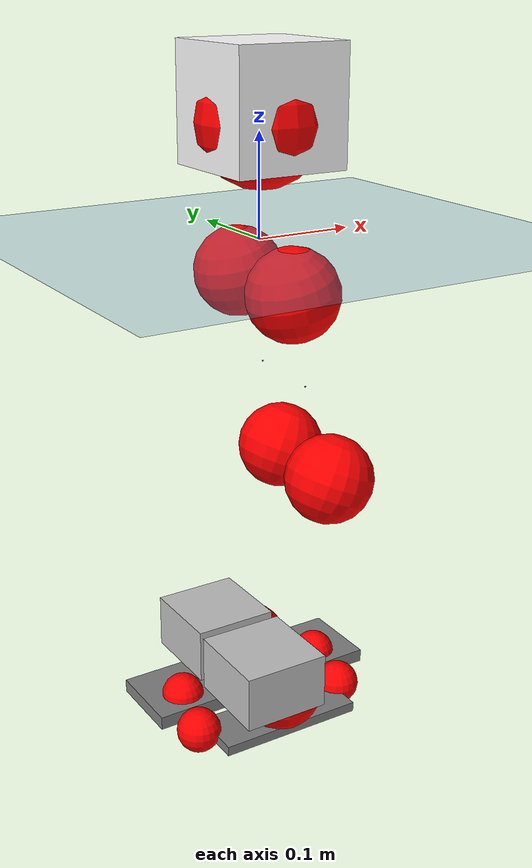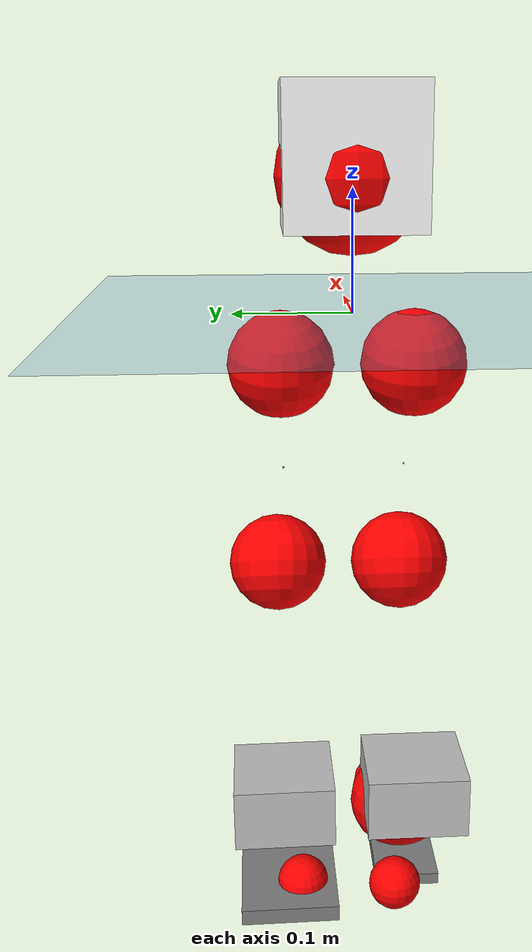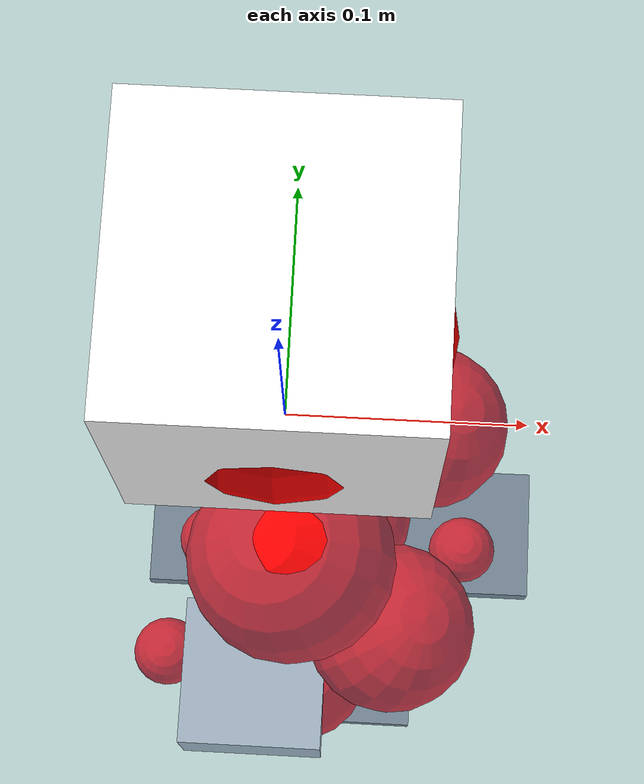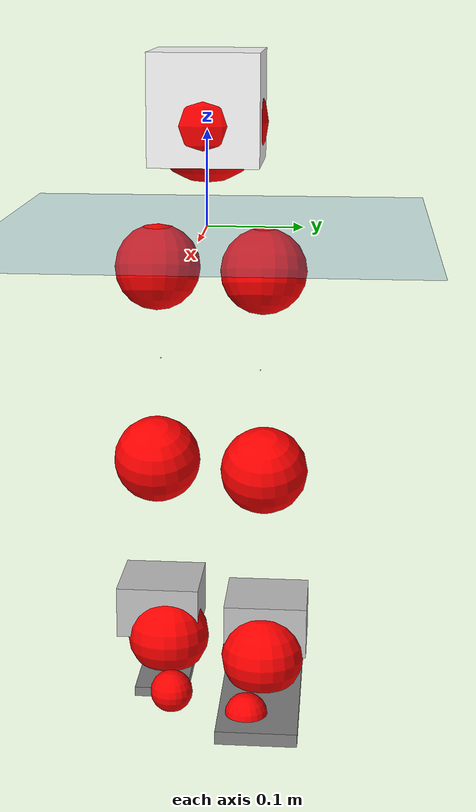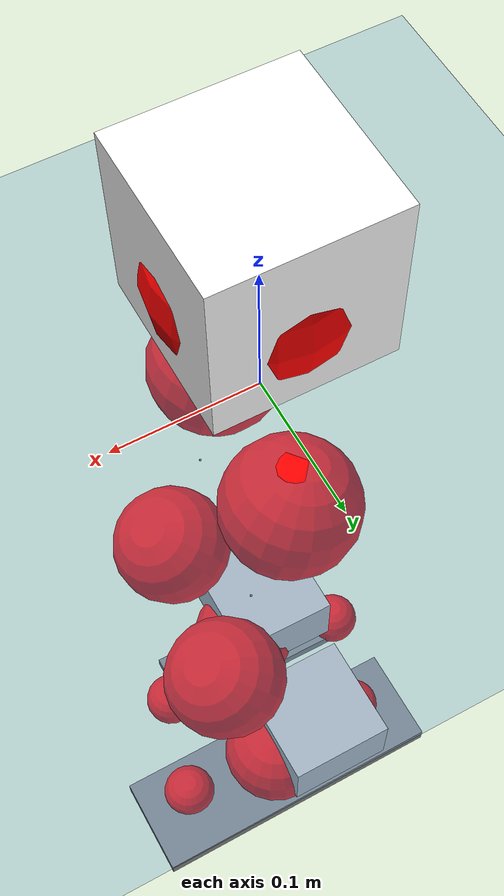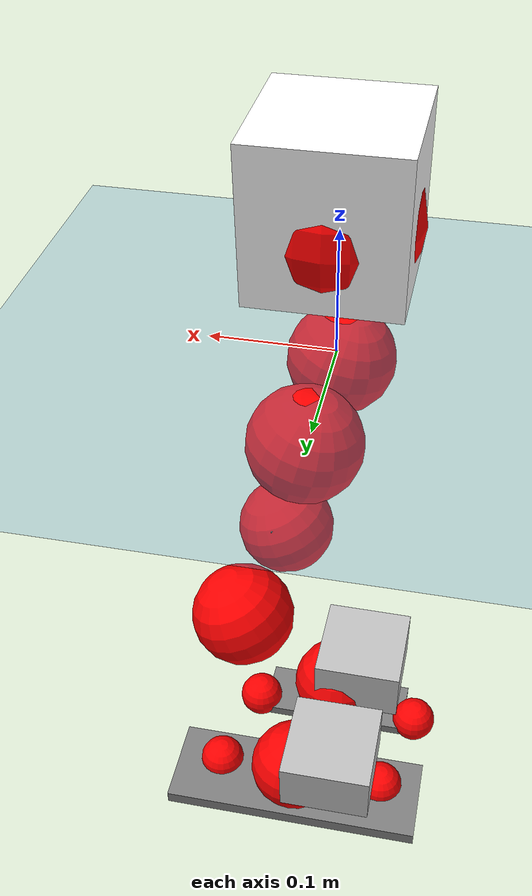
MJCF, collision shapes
<mujoco model="pi_12dof_release_v1">
  <compiler angle="radian" assetdir="assets" balanceinertia="true" inertiafromgeom="false"/>

  <option timestep="0.005" density="1.2" viscosity="2e-05"/>

  <size nkey="1"/>

  <visual>
    <quality shadowsize="8192"/>
    <map shadowclip="0.5"/>
  </visual>

  <default>
    <default class="/">
      <joint armature="0.01" damping="0.01" frictionloss="0.01"/>
      <geom contype="0" conaffinity="0" group="1" solref="-1000 -80"/>
      <site size="0.01 0.005 0.005" group="5"/>
      <general forcelimited="true" biastype="affine" gainprm="20" biasprm="0 -20 -0.5"/>
      <default class="foot">
        <geom size="0.0845 0.036 0.005" type="box" condim="6" group="4" priority="1" friction="0.9 0.2 0.2" solimp="0.015 1 0.005"/>
      </default>
      <default class="reward_collision_sphere">
        <geom group="5" rgba="1 0 0 1"/>
      </default>
    </default>
  </default>

  <asset>
    <texture type="skybox" colorspace="auto" name="//unnamed_texture_0" builtin="gradient" rgb1="0.95 0.95 0.95" rgb2="0.95 0.95 0.95" width="100" height="600"/>
    <texture type="2d" colorspace="auto" name="texplane" builtin="checker" rgb1="0.345 0.575 0.748" rgb2="0.345 0.575 0.748" markrgb="1 1 1" width="512" height="512"/>
    <material name="MatPlane" class="/" texture="texplane" texuniform="true" texrepeat="2 2" specular="0.9"/>
    <mesh name="baselink_1" class="/" file="baselink_1.STL"/>
    <mesh name="r_hip_pitch_link" class="/" file="r_hip_pitch_link.STL"/>
    <mesh name="r_hip_roll_link" class="/" file="r_hip_roll_link.STL"/>
    <mesh name="r_thigh_link" class="/" file="r_thigh_link.STL"/>
    <mesh name="r_calf_link" class="/" file="r_calf_link.STL"/>
    <mesh name="r_ankle_pitch_link" class="/" file="r_ankle_pitch_link.STL"/>
    <mesh name="r_ankle_roll_link" class="/" file="r_ankle_roll_link.STL"/>
    <mesh name="l_hip_pitch_link" class="/" file="l_hip_pitch_link.STL"/>
    <mesh name="l_hip_roll_link" class="/" file="l_hip_roll_link.STL"/>
    <mesh name="l_thigh_link" class="/" file="l_thigh_link.STL"/>
    <mesh name="l_calf_link" class="/" file="l_calf_link.STL"/>
    <mesh name="l_ankle_pitch_link" class="/" file="l_ankle_pitch_link.STL"/>
    <mesh name="l_ankle_roll_link" class="/" file="l_ankle_roll_link.STL"/>
  </asset>

  <worldbody>
    <geom name="floor" class="/" size="100 100 0.125" type="plane" group="0" material="MatPlane"/>
    <light name="toplight_shadow" class="/" pos="0 0 5" dir="0.0990148 0.0990148 -0.990148" type="directional" ambient="0.04 0.04 0.04" diffuse="0.55 0.55 0.55" specular="0.12 0.12 0.12"/>
    <light name="toplight_fill" class="/" pos="0 0 5" dir="0.0990148 0.0990148 -0.990148" type="directional" castshadow="false" ambient="0.04 0.04 0.04" diffuse="0.3 0.3 0.3" specular="0.08 0.08 0.08"/>
    <body name="trunk" pos="0.00214166 0.000591073 0.00352342" quat="0.999999 -0.000949642 6.12599e-05 -0.000503111">
      <inertial pos="0.00771634 0.00596434 0.0600574" quat="0.695934 0.0101257 0.0104306 0.717959" mass="3.2203" diaginertia="0.0293233 0.000874432 0.0285635"/>
      <joint name="//unnamed_joint_0" type="free"/>
      <geom name="//unnamed_geom_1" class="/" type="mesh" density="0" rgba="1 1 1 1" mesh="baselink_1"/>
      <geom name="//unnamed_geom_2" class="/" size="0.0568097 0.0568097 0.0568097" pos="0 0 0.120169" type="box" rgba="1 1 1 1"/>
      <geom name="//unnamed_geom_3" class="reward_collision_sphere" size="0.0624907" pos="0 0 0.105147"/>
      <site name="imu" class="/" pos="0.0408288 -0.0103706 -0.0302623" size="0.0113619"/>
      <camera name="track" class="/" pos="0 -1.27547 0" quat="0.707107 0.707107 0 0" mode="trackcom"/>
      <camera name="ego_camera" class="/" pos="0.0951557 0 0.270379" quat="-0.5 -0.5 0.5 0.5"/>
      <body name="r_hip_pitch_link" pos="0.00167653 -0.0146052 -0.049232" quat="0.992208 -0.000207947 -0.124594 -0.000506293">
        <inertial pos="-0.00508211 -0.0341843 -0.00190233" quat="-0.0106557 0.710952 -0.0234877 0.702768" mass="0.574721" diaginertia="0.000379602 1.00215e-05 0.000625506"/>
        <joint name="r_hip_pitch_joint" class="/" pos="0 0 0" axis="-0.0110051 -0.999044 0.0423176" range="-1.76026 1.3898" armature="0.0118336" damping="0.0467201" frictionloss="0.0112068"/>
        <geom name="//unnamed_geom_4" class="/" type="mesh" density="0" rgba="0.75294 0.75294 0.75294 1" mesh="r_hip_pitch_link"/>
        <geom name="//unnamed_geom_5" class="/" size="0.000568097 0.000568097 0.000568097" type="box" rgba="0.75294 0.75294 0.75294 1"/>
        <body name="r_hip_roll_link" pos="0.00126018 -0.0382933 0.0020867" quat="1 -9.04558e-05 2.74733e-05 3.99722e-05">
          <inertial pos="-0.00238966 0.000639543 -0.0980387" quat="0.707597 -0.0804899 -0.0783174 0.697635" mass="0.565618" diaginertia="0.00121957 3.00775e-05 0.000983558"/>
          <joint name="r_hip_roll_joint" class="/" pos="0 0 0" axis="-0.99921 -0.0015969 -0.0397" range="0.00762731 0.495973" armature="0.0116036" damping="0.00382749" frictionloss="0.00907387"/>
          <geom name="//unnamed_geom_6" class="/" type="mesh" density="0" rgba="0.75294 0.75294 0.75294 1" mesh="r_hip_roll_link"/>
          <geom name="//unnamed_geom_7" class="/" size="0.000568097 0.000568097 0.000568097" type="box" rgba="0.75294 0.75294 0.75294 1"/>
          <geom name="//unnamed_geom_8" class="reward_collision_sphere" size="0.0454478"/>
          <body name="r_thigh_link" pos="-0.00519534 0.00508826 -0.0957939" quat="0.999997 -0.000451249 -0.00102053 -0.00223647">
            <inertial pos="-0.000548997 0.00233979 -0.0728043" quat="0.735278 0.677747 -0.00360806 -0.00359152" mass="0.165382" diaginertia="0.00042079 1.00649e-05 0.000444253"/>
            <joint name="r_thigh_joint" class="/" pos="0 0 0" axis="0.0123467 -0.00550367 -0.999909" range="-0.298843 0.590938" armature="0.010417" damping="0.00253276" frictionloss="0.0124713"/>
            <geom name="//unnamed_geom_9" class="/" type="mesh" density="0" rgba="0.75294 0.75294 0.75294 1" mesh="r_thigh_link"/>
            <geom name="//unnamed_geom_10" class="/" size="0.000568097 0.000568097 0.000568097" type="box" rgba="0.75294 0.75294 0.75294 1"/>
            <body name="r_calf_link" pos="0.00303359 -0.000734012 -0.106655" quat="0.947427 0.000606917 0.319969 0.000926665">
              <inertial pos="-0.00636136 -0.00135411 -0.103271" quat="0.999983 0.00132511 0.000133154 0.00567412" mass="1.13551" diaginertia="0.0112917 0.00034754 0.0012795"/>
              <joint name="r_calf_joint" class="/" pos="0 0 0" axis="-0.0178505 -0.999757 -0.0129545" stiffness="0.00220824" range="-1.69758 0.610572" armature="0.0131861" damping="0" frictionloss="0.0120875"/>
              <geom name="//unnamed_geom_11" class="/" type="mesh" density="0" rgba="0.75294 0.75294 0.75294 1" mesh="r_calf_link"/>
              <geom name="//unnamed_geom_12" class="/" size="0.000568097 0.000568097 0.000568097" type="box" rgba="0.75294 0.75294 0.75294 1"/>
              <geom name="//unnamed_geom_13" class="reward_collision_sphere" size="0.0454478"/>
              <body name="r_ankle_pitch_link" pos="0.00104787 -0.006707 -0.209094" quat="0.980029 0.000119834 -0.198856 0.000124465">
                <inertial pos="0.00607142 0.00432817 -0.00235686" quat="-0.00800777 0.688873 0.00627935 0.724811" mass="0.296383" diaginertia="0.00109559 2.38128e-05 0.000954299"/>
                <joint name="r_ankle_pitch_joint" class="/" pos="0 0 0" axis="-0.0048471 -0.999963 0.00713931" stiffness="0.0171032" range="-1.32686 0.539325" armature="0.0103057" damping="0.0352823" frictionloss="0.0111842"/>
                <geom name="//unnamed_geom_14" class="/" type="mesh" density="0" rgba="0.75294 0.75294 0.75294 1" mesh="r_ankle_pitch_link"/>
                <geom name="//unnamed_geom_15" class="/" size="0.0443116 0.0454478 0.0284049" type="box" rgba="0.75294 0.75294 0.75294 1"/>
                <body name="r_ankle_roll_link" pos="0.0893859 0.0106005 -0.000673887" quat="1 0.000544436 -0.00042333 -3.39065e-06">
                  <inertial pos="-0.03018 -0.000960394 -0.028624" quat="0.558455 0.431471 0.425928 0.566168" mass="0.748038" diaginertia="0.00412185 0.000116405 0.00223783"/>
                  <joint name="r_ankle_roll_joint" class="/" pos="0 0 0" axis="-0.9999 0.00794739 0.011693" stiffness="0.0100922" range="-0.0893897 0.148881" armature="0.0116933" damping="0.0362839" frictionloss="0.00812656"/>
                  <geom name="//unnamed_geom_16" class="/" type="mesh" density="0" rgba="0.75294 0.75294 0.75294 1" mesh="r_ankle_roll_link"/>
                  <geom name="//unnamed_geom_17" class="/" type="mesh" rgba="0.75294 0.75294 0.75294 1" mesh="r_ankle_roll_link"/>
                  <geom name="right_foot" class="foot" size="0.076481 0.0282209 0.00511229" pos="-0.0647059 0 -0.0660927"/>
                  <geom name="//unnamed_geom_19" class="reward_collision_sphere" size="0.0454478" pos="-0.0634372 0 -0.0300421"/>
                  <geom name="//unnamed_geom_20" class="reward_collision_sphere" size="0.0227239" pos="0.0190311 0.0127547 -0.0600843"/>
                  <geom name="//unnamed_geom_21" class="reward_collision_sphere" size="0.0227239" pos="-0.152249 0.0127547 -0.0600843"/>
                  <site name="right_foot" class="foot" pos="-0.0647059 0 -0.0660927" size="0.0113619"/>
                </body>
              </body>
            </body>
          </body>
        </body>
      </body>
      <body name="l_hip_pitch_link" pos="0.00774074 0.0145215 -0.0486844" quat="0.992173 3.1861e-05 -0.124868 0.000224512">
        <inertial pos="0.000379167 0.0280573 0.00107117" quat="-0.0320378 0.698143 0.0283897 0.714677" mass="0.579146" diaginertia="0.000449625 1.07156e-05 0.000885848"/>
        <joint name="l_hip_pitch_joint" class="/" pos="0 0 0" axis="-0.0191653 0.999747 -0.0117725" range="-1.11967 1.80041" armature="0.00718913" damping="0.0436647" frictionloss="0.0103237"/>
        <geom name="//unnamed_geom_22" class="/" type="mesh" density="0" rgba="0.75294 0.75294 0.75294 1" mesh="l_hip_pitch_link"/>
        <geom name="//unnamed_geom_23" class="/" size="0.000568097 0.000568097 0.000568097" type="box" rgba="0.75294 0.75294 0.75294 1"/>
        <body name="l_hip_roll_link" pos="0.00274913 0.0450972 -0.000139011" quat="1 -8.14217e-05 6.80472e-05 0.000103353">
          <inertial pos="-0.00130206 -0.00475266 -0.0939573" quat="0.695313 -0.0840856 -0.0813861 0.709117" mass="0.573102" diaginertia="0.00110641 3.02664e-05 0.000994284"/>
          <joint name="l_hip_roll_joint" class="/" pos="0 0 0" axis="-0.999226 -0.0391203 -0.00418687" stiffness="0.00489972" range="-0.65987 0.0551517" armature="0.0123051" damping="0.00239834" frictionloss="0.0147977"/>
          <geom name="//unnamed_geom_24" class="/" type="mesh" density="0" rgba="0.75294 0.75294 0.75294 1" mesh="l_hip_roll_link"/>
          <geom name="//unnamed_geom_25" class="/" size="0.000568097 0.000568097 0.000568097" type="box" rgba="0.75294 0.75294 0.75294 1"/>
          <geom name="//unnamed_geom_26" class="reward_collision_sphere" size="0.0454478"/>
          <body name="l_thigh_link" pos="0.00285871 -0.00106251 -0.103275" quat="1 -6.43756e-07 5.86682e-05 0.000100133">
            <inertial pos="0.000576984 -0.00046943 -0.0742688" quat="0.693066 0.719897 -0.0370506 -0.00598377" mass="0.165775" diaginertia="0.000422302 1.0277e-05 0.00048981"/>
            <joint name="l_thigh_joint" class="/" pos="0 0 0" axis="-0.000404745 0.00022387 -1" range="-0.55494 0.241205" armature="0.0106384" damping="0.0334733" frictionloss="0.00978301"/>
            <geom name="//unnamed_geom_27" class="/" type="mesh" density="0" rgba="0.75294 0.75294 0.75294 1" mesh="l_thigh_link"/>
            <geom name="//unnamed_geom_28" class="/" size="0.000568097 0.000568097 0.000568097" type="box" rgba="0.75294 0.75294 0.75294 1"/>
            <body name="l_calf_link" pos="0.00089206 0.00640852 -0.104293" quat="0.947333 -0.000655912 0.320243 0.00196329">
              <inertial pos="0.00710433 0.000613321 -0.110578" quat="0.999969 -0.000806246 0.00136931 0.00765599" mass="1.20934" diaginertia="0.0118109 0.000377139 0.00148687"/>
              <joint name="l_calf_joint" class="/" pos="0 0 0" axis="-0.00124913 0.999995 0.00292903" range="-0.651399 1.83311" armature="0.0145635" damping="0.00971157" frictionloss="0.0148703"/>
              <geom name="//unnamed_geom_29" class="/" type="mesh" density="0" rgba="0.75294 0.75294 0.75294 1" mesh="l_calf_link"/>
              <geom name="//unnamed_geom_30" class="/" size="0.000568097 0.000568097 0.000568097" type="box" rgba="0.75294 0.75294 0.75294 1"/>
              <geom name="//unnamed_geom_31" class="reward_collision_sphere" size="0.0454478"/>
              <body name="l_ankle_pitch_link" pos="0.00199481 0.00085128 -0.217209" quat="0.979897 0.000475748 -0.199506 0.000273667">
                <inertial pos="0.0022877 -0.00230323 0.00145243" quat="-0.00300171 0.707335 0.00323974 0.706865" mass="0.313757" diaginertia="0.00119994 2.64768e-05 0.00103559"/>
                <joint name="l_ankle_pitch_joint" class="/" pos="0 0 0" axis="-0.0171433 0.999756 -0.0138992" range="-0.52588 1.27025" armature="0.0112336" damping="0.0263628" frictionloss="0.00616062"/>
                <geom name="//unnamed_geom_32" class="/" type="mesh" density="0" rgba="0.75294 0.75294 0.75294 1" mesh="l_ankle_pitch_link"/>
                <geom name="//unnamed_geom_33" class="/" size="0.0443116 0.0454478 0.0284049" type="box" rgba="0.75294 0.75294 0.75294 1"/>
                <body name="l_ankle_roll_link" pos="0.101824 -0.0024511 0.00062343" quat="1 -0.000315915 -0.000441045 -0.000380756">
                  <inertial pos="-0.0303387 8.68233e-06 -0.0202837" quat="0.57311 0.443371 0.417354 0.548436" mass="0.801682" diaginertia="0.00391388 0.000104421 0.00227088"/>
                  <joint name="l_ankle_roll_joint" class="/" pos="0 0 0" axis="-0.999924 0.0110029 -0.00559017" stiffness="0.00653343" range="-0.151983 0.145598" armature="0.0110499" damping="0.0152403" frictionloss="0.0156533"/>
                  <geom name="//unnamed_geom_34" class="/" type="mesh" density="0" rgba="0.75294 0.75294 0.75294 1" mesh="l_ankle_roll_link"/>
                  <geom name="//unnamed_geom_35" class="/" type="mesh" rgba="0.75294 0.75294 0.75294 1" mesh="l_ankle_roll_link"/>
                  <geom name="left_foot" class="foot" size="0.129425 0.0427738 0.00712266" pos="-0.0647059 0 -0.0660927"/>
                  <geom name="//unnamed_geom_37" class="reward_collision_sphere" size="0.0454478" pos="-0.0634372 0 -0.0300421"/>
                  <geom name="//unnamed_geom_38" class="reward_collision_sphere" size="0.0227239" pos="0.0190311 -0.0127547 -0.0600843"/>
                  <geom name="//unnamed_geom_39" class="reward_collision_sphere" size="0.0227239" pos="-0.152249 -0.0127547 -0.0600843"/>
                  <site name="left_foot" class="foot" pos="-0.0647059 0 -0.0660927" size="0.0113619"/>
                </body>
              </body>
            </body>
          </body>
        </body>
      </body>
    </body>
  </worldbody>

  <contact>
    <pair class="/" geom1="floor" geom2="right_foot" name="//unnamed_contact_1"/>
    <pair class="/" geom1="floor" geom2="left_foot" name="//unnamed_contact_0"/>
  </contact>

  <actuator>
    <general name="r_hip_pitch_joint" class="/" joint="r_hip_pitch_joint" forcerange="-24.0686 24.0686" gainprm="21.8528" biasprm="0 -21.8528 -0.4868"/>
    <general name="r_hip_roll_joint" class="/" joint="r_hip_roll_joint" forcerange="-28.6467 28.6467" gainprm="21.8528" biasprm="0 -21.8528 -0.4868"/>
    <general name="r_thigh_joint" class="/" joint="r_thigh_joint" forcerange="-20.1443 20.1443" gainprm="21.8528" biasprm="0 -21.8528 -0.4868"/>
    <general name="r_calf_joint" class="/" joint="r_calf_joint" forcerange="-22.6108 22.6108" gainprm="21.8528" biasprm="0 -21.8528 -0.4868"/>
    <general name="r_ankle_pitch_joint" class="/" joint="r_ankle_pitch_joint" forcerange="-28.3972 28.3972" gainprm="21.8528" biasprm="0 -21.8528 -0.4868"/>
    <general name="r_ankle_roll_joint" class="/" joint="r_ankle_roll_joint" forcerange="-24.2618 24.2618" gainprm="21.8528" biasprm="0 -21.8528 -0.4868"/>
    <general name="l_hip_pitch_joint" class="/" joint="l_hip_pitch_joint" forcerange="-22.3094 22.3094" gainprm="21.8528" biasprm="0 -21.8528 -0.4868"/>
    <general name="l_hip_roll_joint" class="/" joint="l_hip_roll_joint" forcerange="-25.7774 25.7774" gainprm="21.8528" biasprm="0 -21.8528 -0.4868"/>
    <general name="l_thigh_joint" class="/" joint="l_thigh_joint" forcerange="-22.8244 22.8244" gainprm="21.8528" biasprm="0 -21.8528 -0.4868"/>
    <general name="l_calf_joint" class="/" joint="l_calf_joint" forcerange="-26.2362 26.2362" gainprm="21.8528" biasprm="0 -21.8528 -0.4868"/>
    <general name="l_ankle_pitch_joint" class="/" joint="l_ankle_pitch_joint" forcerange="-23.0132 23.0132" gainprm="21.8528" biasprm="0 -21.8528 -0.4868"/>
    <general name="l_ankle_roll_joint" class="/" joint="l_ankle_roll_joint" forcerange="-29.0939 29.0939" gainprm="21.8528" biasprm="0 -21.8528 -0.4868"/>
  </actuator>

  <sensor>
    <gyro site="imu" name="imu_angular_velocity"/>
    <velocimeter site="imu" name="imu_linear_velocity"/>
    <framelinvel objtype="site" objname="left_foot" name="left_foot_global_linear_velocity"/>
    <framelinvel objtype="site" objname="right_foot" name="right_foot_global_linear_velocity"/>
  </sensor>

  <keyframe>
    <key name="home" qpos="0 0 0.291 1 0 0 0 0.4 0 0 -0.8 0.4 0 -0.4 0 0 0.8 -0.4 0"/>
  </keyframe>
</mujoco>
